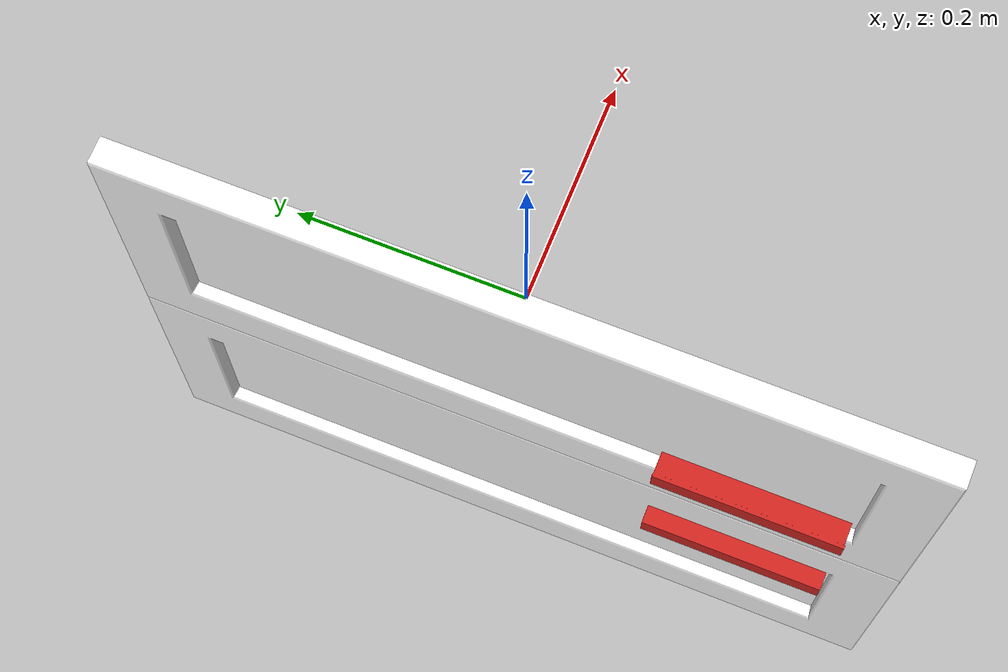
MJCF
<mujoco model="Cabinet_83d77a74">
  <compiler autolimits="true" boundmass="0.01" angle="radian"/>
  <default>
    <default class="/">
      <default class="__VISUAL_MJT__">
        <geom contype="0" conaffinity="0" group="0"/>
      </default>
      <default class="__STRUCTURAL_MJT__">
        <geom contype="8" conaffinity="15" group="4" friction="0.90000000000000002 0.90000000000000002 0.001" solref="0.025000000000000001 1" solimp="0.998 0.998 0.001"/>
      </default>
      <default class="__DYNAMIC_MJT__">
        <geom contype="1" conaffinity="15" group="4" friction="0.90000000000000002 0.90000000000000002 0.001" solref="0.025000000000000001 1" solimp="0.998 0.998 0.001"/>
      </default>
    </default>
  </default>
  <asset>
    <material name="material_WhiteWoodClean" class="/" specular="0.5" shininess="0.5" rgba="1 1 1 1"/>
    <mesh name="Cabinet_83d77a74_CabinetDoorMesh_01_381862aa" class="/" file="Cabinet_83d77a74_CabinetDoorMesh_01_381862aa/Cabinet_83d77a74_CabinetDoorMesh_01_381862aa.obj" scale="1 1 1" inertia="legacy"/>
    <texture name="HammeredMetal_AlbedoTransparency_2" type="2d" file="HammeredMetal_AlbedoTransparency.png"/>
    <material name="material_HammeredMetal_AlbedoTransparency_2" class="/" texture="HammeredMetal_AlbedoTransparency_2" specular="0.5" shininess="0.5" rgba="1 0.93407709999999999 0.81617649999999997 1"/>
    <mesh name="Cabinet_83d77a74_handle_3_178mm_01_0553cc10" class="/" file="Cabinet_83d77a74_handle_3_178mm_01_0553cc10/Cabinet_83d77a74_handle_3_178mm_01_0553cc10.obj" scale="1 1 1" inertia="legacy"/>
    <mesh name="Cabinet_83d77a74_CabinetDoorMesh_02_bf5159cb" class="/" file="Cabinet_83d77a74_CabinetDoorMesh_02_bf5159cb/Cabinet_83d77a74_CabinetDoorMesh_02_bf5159cb.obj" scale="1 1 1" inertia="legacy"/>
    <mesh name="Cabinet_83d77a74_handle_3_178mm_02_9244d589" class="/" file="Cabinet_83d77a74_handle_3_178mm_02_9244d589/Cabinet_83d77a74_handle_3_178mm_02_9244d589.obj" scale="1 1 1" inertia="legacy"/>
  </asset>
  <worldbody>
    <body name="Cabinet_83d77a74">
      <body name="Cabinet_83d77a74_CabinetDoorMesh_01_381862aa" pos="-0 0 0" quat="0.70710678118654757 0 -0.70710678118654746 0">
        <geom name="Cabinet_83d77a74_CabinetDoorMesh_01_381862aa" class="__VISUAL_MJT__" type="mesh" material="material_WhiteWoodClean" mesh="Cabinet_83d77a74_CabinetDoorMesh_01_381862aa"/>
        <joint name="Cabinet_83d77a74_joint" class="/" type="hinge" pos="-0 0 0" axis="0 -1 0" stiffness="0" range="-1.5707963267948966 0" damping="0.10000000000000001" frictionloss="0"/>
        <geom name="Cabinet_83d77a74_CabinetDoorMesh_01_381862aa_PrimitiveCollider_0" class="__DYNAMIC_MJT__" type="box" size="0.14506600797176361 0.37472903728485107 0.015462031587958336" rgba="0 1 0 1" pos="-0.1353733092546463 0.0026938915252685547 0.013115900568664074" quat="0 1 0 0"/>
        <body name="Cabinet_83d77a74_handle_3_178mm_01_0553cc10" pos="-0.21400006115436554 -0.22420001029968262 0.010000020265579224" quat="0.70710678118654757 0 0 -0.70710678118654746">
          <geom name="Cabinet_83d77a74_handle_3_178mm_01_0553cc10" class="__VISUAL_MJT__" type="mesh" material="material_HammeredMetal_AlbedoTransparency_2" mesh="Cabinet_83d77a74_handle_3_178mm_01_0553cc10"/>
          <geom name="Cabinet_83d77a74_handle_3_178mm_01_0553cc10_PrimitiveCollider_0" class="__DYNAMIC_MJT__" type="box" size="0.088752113282680511 0.0035549132153391838 0.016431534662842751" rgba="0 1 0 1" pos="3.8838443572331016e-09 -7.1335115592319198e-09 0.016289953142404556" quat="0 1 0 0"/>
          <geom name="Cabinet_83d77a74_handle_3_178mm_01_0553cc10_PrimitiveCollider_1" class="__DYNAMIC_MJT__" type="box" size="0.088752113282680511 0.0077598174102604389 0.0019227263983339071" rgba="0 1 0 1" pos="-6.1096301351426519e-09 0.011284905485808849 0.030798792839050293" quat="0 1 0 0"/>
        </body>
      </body>
      <body name="Cabinet_83d77a74_CabinetDoorMesh_02_bf5159cb" pos="-0 0 -0.57150006294250488" quat="0.70710678118654757 0 -0.70710678118654746 0">
        <geom name="Cabinet_83d77a74_CabinetDoorMesh_02_bf5159cb" class="__VISUAL_MJT__" type="mesh" material="material_WhiteWoodClean" mesh="Cabinet_83d77a74_CabinetDoorMesh_02_bf5159cb"/>
        <joint name="Cabinet_83d77a74_CabinetDoorMesh_02_bf5159cb__1" class="/" type="hinge" pos="-0 0 0" axis="0 -1 0" stiffness="0" range="0 1.5707963267948966" damping="0.10000000000000001" frictionloss="0"/>
        <geom name="Cabinet_83d77a74_CabinetDoorMesh_02_bf5159cb_PrimitiveCollider_0" class="__DYNAMIC_MJT__" type="box" size="0.14415575563907623 0.37472903728485107 0.015462031587958336" rgba="0 1 0 1" pos="0.14569850265979767 0.0026938915252685547 0.013115986250340939" quat="0 1 0 0"/>
        <body name="Cabinet_83d77a74_handle_3_178mm_02_9244d589" pos="0.2234000563621521 -0.22399997711181641 0.0099999606609344482" quat="0.70710678118654757 0 0 0.70710678118654746">
          <geom name="Cabinet_83d77a74_handle_3_178mm_02_9244d589" class="__VISUAL_MJT__" type="mesh" material="material_HammeredMetal_AlbedoTransparency_2" mesh="Cabinet_83d77a74_handle_3_178mm_02_9244d589"/>
          <geom name="Cabinet_83d77a74_handle_3_178mm_02_9244d589_PrimitiveCollider_0" class="__DYNAMIC_MJT__" type="box" size="0.088752083480358124 0.0035549120511859655 0.016431532800197601" rgba="0 1 0 1" pos="3.8838159355236712e-09 1.232497837122537e-08 0.016290070489048958" quat="0 1 0 0"/>
          <geom name="Cabinet_83d77a74_handle_3_178mm_02_9244d589_PrimitiveCollider_1" class="__DYNAMIC_MJT__" type="box" size="0.088752083480358124 0.0077598146162927151 0.0019227261655032635" rgba="0 1 0 1" pos="-7.4549326711803587e-09 0.011284885928034782 0.030798809602856636" quat="0 1 0 0"/>
        </body>
      </body>
    </body>
  </worldbody>
  <contact>
    <exclude name="//unnamed_contact_0" body1="Cabinet_83d77a74_CabinetDoorMesh_01_381862aa" body2="Cabinet_83d77a74_handle_3_178mm_01_0553cc10"/>
    <exclude name="//unnamed_contact_1" body1="Cabinet_83d77a74_CabinetDoorMesh_02_bf5159cb" body2="Cabinet_83d77a74_handle_3_178mm_01_0553cc10"/>
  </contact>
</mujoco>
